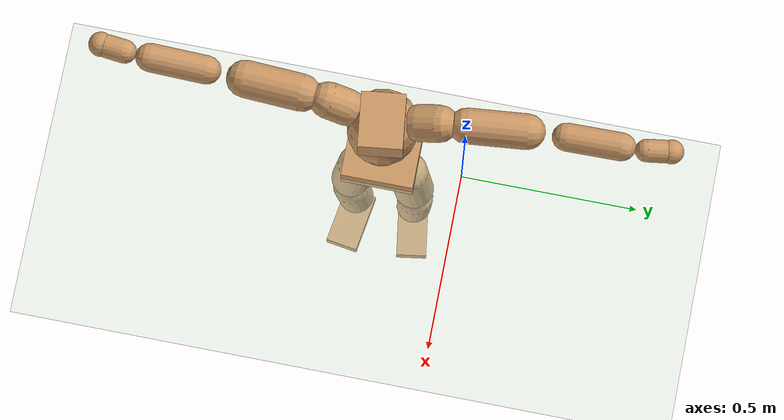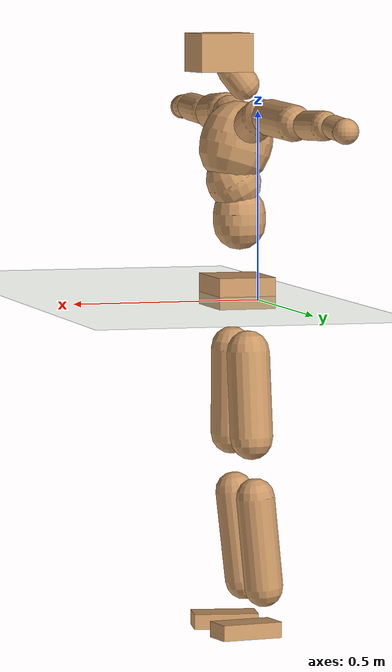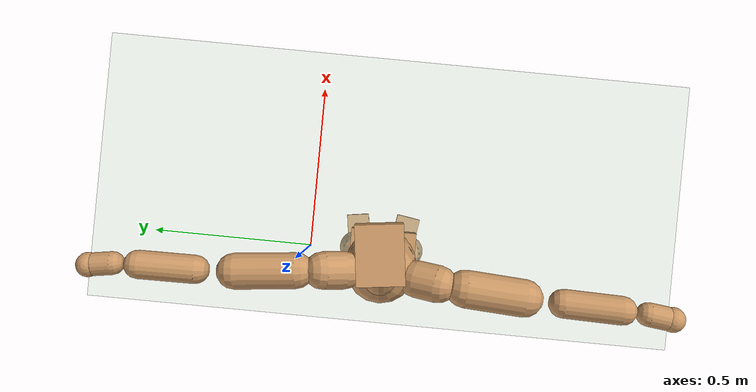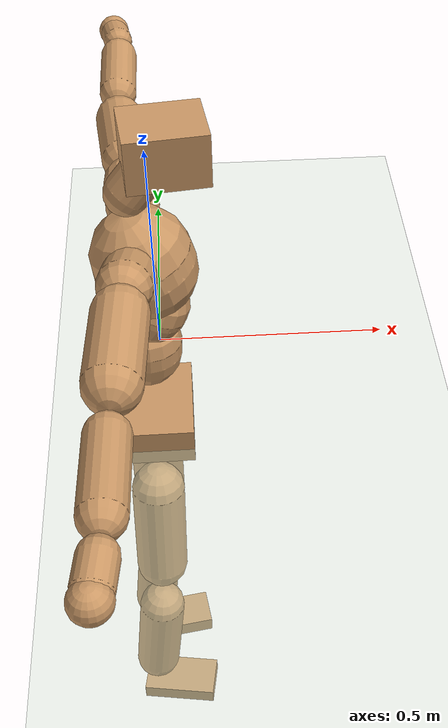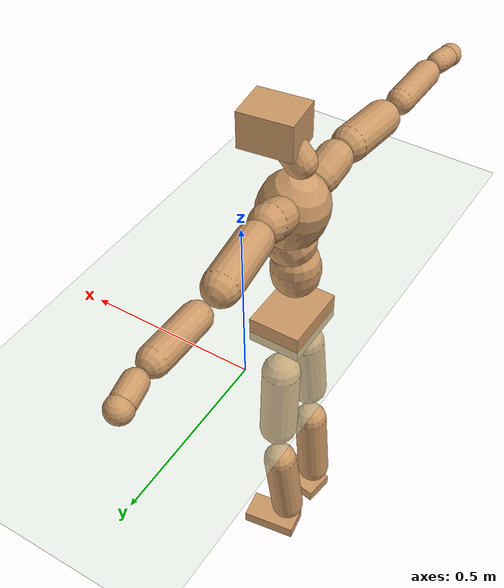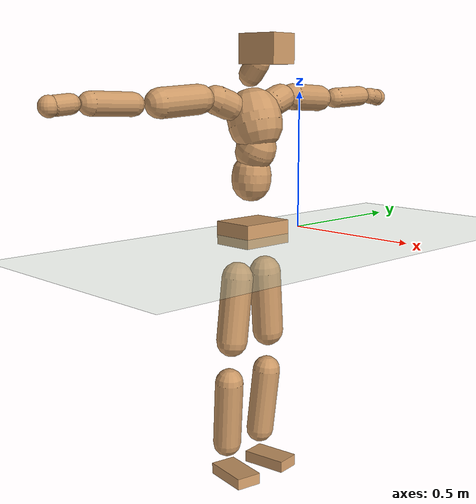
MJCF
<mujoco model="humanoid">
  <compiler coordinate="local" angle="radian"/>
  <default>
    <joint damping="0.0" armature="0.01" stiffness="0.0" limited="true"/>
    <geom conaffinity="1" condim="3" contype="7" margin="0.001" rgba="0.8 0.6 .4 1"/>
  </default>
  <asset>
    <texture type="skybox" builtin="gradient" rgb1=".4 .5 .6" rgb2="0 0 0" width="100" height="100"/>
    <texture builtin="flat" height="1278" mark="cross" markrgb="1 1 1" name="texgeom" random="0.01" rgb1="0.8 0.6 0.4" rgb2="0.8 0.6 0.4" type="cube" width="127"/>
    <texture builtin="checker" height="100" name="texplane" rgb1="0 0 0" rgb2="0.8 0.8 0.8" type="2d" width="100"/>
    <material name="MatPlane" reflectance="0.5" shininess="1" specular="1" texrepeat="60 60" texture="texplane"/>
    <material name="geom" texture="texgeom" texuniform="true"/>
  </asset>
  <worldbody>
    <light cutoff="100" diffuse="1 1 1" dir="-0 0 -1.3" directional="true" exponent="1" pos="0 0 1.3" specular=".1 .1 .1"/>
    <geom conaffinity="1" condim="3" name="floor" pos="0 0 0" rgba="0.8 0.9 0.8 1" size="100 100 .2" type="plane" material="MatPlane"/>
    <body name="Pelvis" pos="-0.0015 -0.23 0.0193">
      <freejoint name="Pelvis"/>
      <geom type="box" contype="1" conaffinity="1" density="500" pos="-0.0071 0.0000 -0.0133" size="0.0779 0.1028 0.0419" quat="1.0000 0.0000 0.0000 -0.0000" name="Pelvis"/>
      <body name="L_Hip" pos="-0.016 0.0666 -0.0951">
        <joint name="L_Hip_x" type="hinge" pos="0 0 0" axis="1 0 0" stiffness="800" damping="80" armature="0.02" range="-180.0000 180.0000"/>
        <joint name="L_Hip_y" type="hinge" pos="0 0 0" axis="0 1 0" stiffness="800" damping="80" armature="0.02" range="-180.0000 180.0000"/>
        <joint name="L_Hip_z" type="hinge" pos="0 0 0" axis="0 0 1" stiffness="800" damping="80" armature="0.02" range="-180.0000 180.0000"/>
        <geom type="capsule" contype="1" conaffinity="1" density="500" fromto="-0.0012 0.0067 -0.0771 -0.0050 0.0267 -0.3085" size="0.0577" name="L_Hip"/>
        <body name="L_Knee" pos="-0.0062 0.0334 -0.3857">
          <joint name="L_Knee_x" type="hinge" pos="0 0 0" axis="1 0 0" stiffness="800" damping="80" armature="0.02" range="-180.0000 180.0000"/>
          <joint name="L_Knee_y" type="hinge" pos="0 0 0" axis="0 1 0" stiffness="800" damping="80" armature="0.02" range="-180.0000 180.0000"/>
          <joint name="L_Knee_z" type="hinge" pos="0 0 0" axis="0 0 1" stiffness="800" damping="80" armature="0.02" range="-180.0000 180.0000"/>
          <geom type="capsule" contype="1" conaffinity="1" density="500" fromto="-0.0088 -0.0028 -0.0821 -0.0350 -0.0112 -0.3284" size="0.0521" name="L_Knee"/>
          <body name="L_Ankle" pos="-0.0438 -0.014 -0.4105">
            <joint name="L_Ankle_x" type="hinge" pos="0 0 0" axis="1 0 0" stiffness="800" damping="80" armature="0.02" range="-180.0000 180.0000"/>
            <joint name="L_Ankle_y" type="hinge" pos="0 0 0" axis="0 1 0" stiffness="800" damping="80" armature="0.02" range="-180.0000 180.0000"/>
            <joint name="L_Ankle_z" type="hinge" pos="0 0 0" axis="0 0 1" stiffness="800" damping="80" armature="0.02" range="-180.0000 180.0000"/>
            <geom type="box" contype="1" conaffinity="1" density="500" pos="0.0604 0.0090 -0.0287" size="0.0853 0.0454 0.0214" quat="0.9972 0.0000 0.0000 0.0742" name="L_Ankle"/>
            <body name="L_Toe" pos="0.1209 0.0181 -0.0574">
              <joint name="L_Toe_x" type="hinge" pos="0 0 0" axis="1 0 0" stiffness="500" damping="50" armature="0.02" range="-180.0000 180.0000"/>
              <joint name="L_Toe_y" type="hinge" pos="0 0 0" axis="0 1 0" stiffness="500" damping="50" armature="0.02" range="-180.0000 180.0000"/>
              <joint name="L_Toe_z" type="hinge" pos="0 0 0" axis="0 0 1" stiffness="500" damping="50" armature="0.02" range="-180.0000 180.0000"/>
              <geom type="box" contype="1" conaffinity="1" density="500" pos="0.0000 0.0000 0.0280" size="0.001 0.0023 0.001" quat="0.9967 0.0000 0.0000 0.0809" name="L_Toe"/>
            </body>
          </body>
        </body>
      </body>
      <body name="R_Hip" pos="-0.0113 -0.0632 -0.0946">
        <joint name="R_Hip_x" type="hinge" pos="0 0 0" axis="1 0 0" stiffness="800" damping="80" armature="0.02" range="-180.0000 180.0000"/>
        <joint name="R_Hip_y" type="hinge" pos="0 0 0" axis="0 1 0" stiffness="800" damping="80" armature="0.02" range="-180.0000 180.0000"/>
        <joint name="R_Hip_z" type="hinge" pos="0 0 0" axis="0 0 1" stiffness="800" damping="80" armature="0.02" range="-180.0000 180.0000"/>
        <geom type="capsule" contype="1" conaffinity="1" density="500" fromto="-0.0019 -0.0079 -0.0784 -0.0076 -0.0316 -0.3136" size="0.0569" name="R_Hip"/>
        <body name="R_Knee" pos="-0.0094 -0.0395 -0.392">
          <joint name="R_Knee_x" type="hinge" pos="0 0 0" axis="1 0 0" stiffness="800" damping="80" armature="0.02" range="-180.0000 180.0000"/>
          <joint name="R_Knee_y" type="hinge" pos="0 0 0" axis="0 1 0" stiffness="800" damping="80" armature="0.02" range="-180.0000 180.0000"/>
          <joint name="R_Knee_z" type="hinge" pos="0 0 0" axis="0 0 1" stiffness="800" damping="80" armature="0.02" range="-180.0000 180.0000"/>
          <geom type="capsule" contype="1" conaffinity="1" density="500" fromto="-0.0082 0.0035 -0.0818 -0.0329 0.0138 -0.3272" size="0.0523" name="R_Knee"/>
          <body name="R_Ankle" pos="-0.0411 0.0173 -0.409">
            <joint name="R_Ankle_x" type="hinge" pos="0 0 0" axis="1 0 0" stiffness="800" damping="80" armature="0.02" range="-180.0000 180.0000"/>
            <joint name="R_Ankle_y" type="hinge" pos="0 0 0" axis="0 1 0" stiffness="800" damping="80" armature="0.02" range="-180.0000 180.0000"/>
            <joint name="R_Ankle_z" type="hinge" pos="0 0 0" axis="0 0 1" stiffness="800" damping="80" armature="0.02" range="-180.0000 180.0000"/>
            <geom type="box" contype="1" conaffinity="1" density="500" pos="0.0623 -0.0099 -0.0242" size="0.0874 0.048 0.0206" quat="0.9969 0.0000 0.0000 -0.0785" name="R_Ankle"/>
            <body name="R_Toe" pos="0.1246 -0.0197 -0.0485">
              <joint name="R_Toe_x" type="hinge" pos="0 0 0" axis="1 0 0" stiffness="500" damping="50" armature="0.02" range="-180.0000 180.0000"/>
              <joint name="R_Toe_y" type="hinge" pos="0 0 0" axis="0 1 0" stiffness="500" damping="50" armature="0.02" range="-180.0000 180.0000"/>
              <joint name="R_Toe_z" type="hinge" pos="0 0 0" axis="0 0 1" stiffness="500" damping="50" armature="0.02" range="-180.0000 180.0000"/>
              <geom type="box" contype="1" conaffinity="1" density="500" pos="0.0000 0.0000 0.0269" size="0.0009 0.0023 0.0012" quat="0.9976 0.0000 0.0000 -0.0695" name="R_Toe"/>
            </body>
          </body>
        </body>
      </body>
      <body name="Torso" pos="-0.0155 -0.0033 0.1096">
        <joint name="Torso_x" type="hinge" pos="0 0 0" axis="1 0 0" stiffness="1000" damping="100" armature="0.02" range="-180.0000 180.0000"/>
        <joint name="Torso_y" type="hinge" pos="0 0 0" axis="0 1 0" stiffness="1000" damping="100" armature="0.02" range="-180.0000 180.0000"/>
        <joint name="Torso_z" type="hinge" pos="0 0 0" axis="0 0 1" stiffness="1000" damping="100" armature="0.02" range="-180.0000 180.0000"/>
        <geom type="capsule" contype="1" conaffinity="1" density="500" fromto="0.0022 0.0028 0.0872 0.0014 0.0019 0.0582" size="0.0707" name="Torso"/>
        <body name="Spine" pos="0.0036 0.0047 0.1454">
          <joint name="Spine_x" type="hinge" pos="0 0 0" axis="1 0 0" stiffness="1000" damping="100" armature="0.02" range="-180.0000 180.0000"/>
          <joint name="Spine_y" type="hinge" pos="0 0 0" axis="0 1 0" stiffness="1000" damping="100" armature="0.02" range="-180.0000 180.0000"/>
          <joint name="Spine_z" type="hinge" pos="0 0 0" axis="0 0 1" stiffness="1000" damping="100" armature="0.02" range="-180.0000 180.0000"/>
          <geom type="capsule" contype="1" conaffinity="1" density="500" fromto="0.0188 0.0018 0.0322 0.0125 0.0012 0.0214" size="0.072" name="Spine"/>
          <body name="Chest" pos="0.0313 0.0029 0.0536">
            <joint name="Chest_x" type="hinge" pos="0 0 0" axis="1 0 0" stiffness="1000" damping="100" armature="0.02" range="-180.0000 180.0000"/>
            <joint name="Chest_y" type="hinge" pos="0 0 0" axis="0 1 0" stiffness="1000" damping="100" armature="0.02" range="-180.0000 180.0000"/>
            <joint name="Chest_z" type="hinge" pos="0 0 0" axis="0 0 1" stiffness="1000" damping="100" armature="0.02" range="-180.0000 180.0000"/>
            <geom type="capsule" contype="1" conaffinity="1" density="500" fromto="-0.0275 -0.0004 0.0929 -0.0183 -0.0002 0.0619" size="0.0968" name="Chest"/>
            <body name="Neck" pos="-0.054 -0.0009 0.2198">
              <joint name="Neck_x" type="hinge" pos="0 0 0" axis="1 0 0" stiffness="500" damping="50" armature="0.02" range="-180.0000 180.0000"/>
              <joint name="Neck_y" type="hinge" pos="0 0 0" axis="0 1 0" stiffness="500" damping="50" armature="0.02" range="-180.0000 180.0000"/>
              <joint name="Neck_z" type="hinge" pos="0 0 0" axis="0 0 1" stiffness="500" damping="50" armature="0.02" range="-180.0000 180.0000"/>
              <geom type="capsule" contype="1" conaffinity="1" density="500" fromto="0.0107 0.0010 0.0131 0.0427 0.0039 0.0525" size="0.0424" name="Neck"/>
              <body name="Head" pos="0.0534 0.0048 0.0656">
                <joint name="Head_x" type="hinge" pos="0 0 0" axis="1 0 0" stiffness="500" damping="50" armature="0.02" range="-180.0000 180.0000"/>
                <joint name="Head_y" type="hinge" pos="0 0 0" axis="0 1 0" stiffness="500" damping="50" armature="0.02" range="-180.0000 180.0000"/>
                <joint name="Head_z" type="hinge" pos="0 0 0" axis="0 0 1" stiffness="500" damping="50" armature="0.02" range="-180.0000 180.0000"/>
                <geom type="box" contype="1" conaffinity="1" density="500" pos="0.0277 0.0034 0.0338" size="0.0748 0.0595 0.0519" quat="0.9981 0.0000 0.0000 0.0613" name="Head"/>
              </body>
            </body>
            <body name="L_Thorax" pos="-0.0394 0.0796 0.1239">
              <joint name="L_Thorax_x" type="hinge" pos="0 0 0" axis="1 0 0" stiffness="500" damping="50" armature="0.02" range="-180.0000 180.0000"/>
              <joint name="L_Thorax_y" type="hinge" pos="0 0 0" axis="0 1 0" stiffness="500" damping="50" armature="0.02" range="-180.0000 180.0000"/>
              <joint name="L_Thorax_z" type="hinge" pos="0 0 0" axis="0 0 1" stiffness="500" damping="50" armature="0.02" range="-180.0000 180.0000"/>
              <geom type="capsule" contype="1" conaffinity="1" density="500" fromto="-0.0013 0.0178 0.0065 -0.0052 0.0714 0.0260" size="0.0512" name="L_Thorax"/>
              <body name="L_Shoulder" pos="-0.0066 0.0892 0.0324">
                <joint name="L_Shoulder_x" type="hinge" pos="0 0 0" axis="1 0 0" stiffness="500" damping="50" armature="0.02" range="-720.0000 720.0000"/>
                <joint name="L_Shoulder_y" type="hinge" pos="0 0 0" axis="0 1 0" stiffness="500" damping="50" armature="0.02" range="-720.0000 720.0000"/>
                <joint name="L_Shoulder_z" type="hinge" pos="0 0 0" axis="0 0 1" stiffness="500" damping="50" armature="0.02" range="-720.0000 720.0000"/>
                <geom type="capsule" contype="1" conaffinity="1" density="500" fromto="-0.0057 0.0542 -0.0028 -0.0229 0.2168 -0.0110" size="0.0488" name="L_Shoulder"/>
                <body name="L_Elbow" pos="-0.0286 0.271 -0.0138">
                  <joint name="L_Elbow_x" type="hinge" pos="0 0 0" axis="1 0 0" stiffness="500" damping="50" armature="0.02" range="-720.0000 720.0000"/>
                  <joint name="L_Elbow_y" type="hinge" pos="0 0 0" axis="0 1 0" stiffness="500" damping="50" armature="0.02" range="-720.0000 720.0000"/>
                  <joint name="L_Elbow_z" type="hinge" pos="0 0 0" axis="0 0 1" stiffness="500" damping="50" armature="0.02" range="-720.0000 720.0000"/>
                  <geom type="capsule" contype="1" conaffinity="1" density="500" fromto="-0.0001 0.0502 0.0019 -0.0005 0.2009 0.0076" size="0.0386" name="L_Elbow"/>
                  <body name="L_Wrist" pos="-0.0006 0.2512 0.0095">
                    <joint name="L_Wrist_x" type="hinge" pos="0 0 0" axis="1 0 0" stiffness="300" damping="30" armature="0.02" range="-180.0000 180.0000"/>
                    <joint name="L_Wrist_y" type="hinge" pos="0 0 0" axis="0 1 0" stiffness="300" damping="30" armature="0.02" range="-180.0000 180.0000"/>
                    <joint name="L_Wrist_z" type="hinge" pos="0 0 0" axis="0 0 1" stiffness="300" damping="30" armature="0.02" range="-180.0000 180.0000"/>
                    <geom type="capsule" contype="1" conaffinity="1" density="500" fromto="-0.0028 0.0167 -0.0020 -0.0111 0.0667 -0.0080" size="0.0313" name="L_Wrist"/>
                    <body name="L_Hand" pos="-0.0139 0.0833 -0.01">
                      <joint name="L_Hand_x" type="hinge" pos="0 0 0" axis="1 0 0" stiffness="300" damping="30" armature="0.02" range="-180.0000 180.0000"/>
                      <joint name="L_Hand_y" type="hinge" pos="0 0 0" axis="0 1 0" stiffness="300" damping="30" armature="0.02" range="-180.0000 180.0000"/>
                      <joint name="L_Hand_z" type="hinge" pos="0 0 0" axis="0 0 1" stiffness="300" damping="30" armature="0.02" range="-180.0000 180.0000"/>
                      <geom type="sphere" contype="1" conaffinity="1" density="500" size="0.0335" pos="0.0000 0.0000 0.0000" name="L_Hand"/>
                    </body>
                  </body>
                </body>
              </body>
            </body>
            <body name="R_Thorax" pos="-0.0441 -0.0805 0.1207">
              <joint name="R_Thorax_x" type="hinge" pos="0 0 0" axis="1 0 0" stiffness="500" damping="50" armature="0.02" range="-180.0000 180.0000"/>
              <joint name="R_Thorax_y" type="hinge" pos="0 0 0" axis="0 1 0" stiffness="500" damping="50" armature="0.02" range="-180.0000 180.0000"/>
              <joint name="R_Thorax_z" type="hinge" pos="0 0 0" axis="0 0 1" stiffness="500" damping="50" armature="0.02" range="-180.0000 180.0000"/>
              <geom type="capsule" contype="1" conaffinity="1" density="500" fromto="-0.0019 -0.0189 0.0069 -0.0076 -0.0755 0.0276" size="0.0503" name="R_Thorax"/>
              <body name="R_Shoulder" pos="-0.0095 -0.0943 0.0344">
                <joint name="R_Shoulder_x" type="hinge" pos="0 0 0" axis="1 0 0" stiffness="500" damping="50" armature="0.02" range="-720.0000 720.0000"/>
                <joint name="R_Shoulder_y" type="hinge" pos="0 0 0" axis="0 1 0" stiffness="500" damping="50" armature="0.02" range="-720.0000 720.0000"/>
                <joint name="R_Shoulder_z" type="hinge" pos="0 0 0" axis="0 0 1" stiffness="500" damping="50" armature="0.02" range="-720.0000 720.0000"/>
                <geom type="capsule" contype="1" conaffinity="1" density="500" fromto="-0.0036 -0.0530 -0.0033 -0.0145 -0.2120 -0.0133" size="0.0512" name="R_Shoulder"/>
                <body name="R_Elbow" pos="-0.0181 -0.265 -0.0166">
                  <joint name="R_Elbow_x" type="hinge" pos="0 0 0" axis="1 0 0" stiffness="500" damping="50" armature="0.02" range="-720.0000 720.0000"/>
                  <joint name="R_Elbow_y" type="hinge" pos="0 0 0" axis="0 1 0" stiffness="500" damping="50" armature="0.02" range="-720.0000 720.0000"/>
                  <joint name="R_Elbow_z" type="hinge" pos="0 0 0" axis="0 0 1" stiffness="500" damping="50" armature="0.02" range="-720.0000 720.0000"/>
                  <geom type="capsule" contype="1" conaffinity="1" density="500" fromto="-0.0010 -0.0523 0.0018 -0.0042 -0.2093 0.0071" size="0.0392" name="R_Elbow"/>
                  <body name="R_Wrist" pos="-0.0052 -0.2617 0.0089">
                    <joint name="R_Wrist_x" type="hinge" pos="0 0 0" axis="1 0 0" stiffness="300" damping="30" armature="0.02" range="-180.0000 180.0000"/>
                    <joint name="R_Wrist_y" type="hinge" pos="0 0 0" axis="0 1 0" stiffness="300" damping="30" armature="0.02" range="-180.0000 180.0000"/>
                    <joint name="R_Wrist_z" type="hinge" pos="0 0 0" axis="0 0 1" stiffness="300" damping="30" armature="0.02" range="-180.0000 180.0000"/>
                    <geom type="capsule" contype="1" conaffinity="1" density="500" fromto="-0.0022 -0.0170 -0.0015 -0.0088 -0.0681 -0.0061" size="0.0323" name="R_Wrist"/>
                    <body name="R_Hand" pos="-0.011 -0.0852 -0.0076">
                      <joint name="R_Hand_x" type="hinge" pos="0 0 0" axis="1 0 0" stiffness="300" damping="30" armature="0.02" range="-180.0000 180.0000"/>
                      <joint name="R_Hand_y" type="hinge" pos="0 0 0" axis="0 1 0" stiffness="300" damping="30" armature="0.02" range="-180.0000 180.0000"/>
                      <joint name="R_Hand_z" type="hinge" pos="0 0 0" axis="0 0 1" stiffness="300" damping="30" armature="0.02" range="-180.0000 180.0000"/>
                      <geom type="sphere" contype="1" conaffinity="1" density="500" size="0.0341" pos="0.0000 0.0000 0.0000" name="R_Hand"/>
                    </body>
                  </body>
                </body>
              </body>
            </body>
          </body>
        </body>
      </body>
    </body>
  </worldbody>
  <actuator>
    <motor name="L_Hip_x" joint="L_Hip_x" gear="500"/>
    <motor name="L_Hip_y" joint="L_Hip_y" gear="500"/>
    <motor name="L_Hip_z" joint="L_Hip_z" gear="500"/>
    <motor name="L_Knee_x" joint="L_Knee_x" gear="500"/>
    <motor name="L_Knee_y" joint="L_Knee_y" gear="500"/>
    <motor name="L_Knee_z" joint="L_Knee_z" gear="500"/>
    <motor name="L_Ankle_x" joint="L_Ankle_x" gear="500"/>
    <motor name="L_Ankle_y" joint="L_Ankle_y" gear="500"/>
    <motor name="L_Ankle_z" joint="L_Ankle_z" gear="500"/>
    <motor name="L_Toe_x" joint="L_Toe_x" gear="500"/>
    <motor name="L_Toe_y" joint="L_Toe_y" gear="500"/>
    <motor name="L_Toe_z" joint="L_Toe_z" gear="500"/>
    <motor name="R_Hip_x" joint="R_Hip_x" gear="500"/>
    <motor name="R_Hip_y" joint="R_Hip_y" gear="500"/>
    <motor name="R_Hip_z" joint="R_Hip_z" gear="500"/>
    <motor name="R_Knee_x" joint="R_Knee_x" gear="500"/>
    <motor name="R_Knee_y" joint="R_Knee_y" gear="500"/>
    <motor name="R_Knee_z" joint="R_Knee_z" gear="500"/>
    <motor name="R_Ankle_x" joint="R_Ankle_x" gear="500"/>
    <motor name="R_Ankle_y" joint="R_Ankle_y" gear="500"/>
    <motor name="R_Ankle_z" joint="R_Ankle_z" gear="500"/>
    <motor name="R_Toe_x" joint="R_Toe_x" gear="500"/>
    <motor name="R_Toe_y" joint="R_Toe_y" gear="500"/>
    <motor name="R_Toe_z" joint="R_Toe_z" gear="500"/>
    <motor name="Torso_x" joint="Torso_x" gear="500"/>
    <motor name="Torso_y" joint="Torso_y" gear="500"/>
    <motor name="Torso_z" joint="Torso_z" gear="500"/>
    <motor name="Spine_x" joint="Spine_x" gear="500"/>
    <motor name="Spine_y" joint="Spine_y" gear="500"/>
    <motor name="Spine_z" joint="Spine_z" gear="500"/>
    <motor name="Chest_x" joint="Chest_x" gear="500"/>
    <motor name="Chest_y" joint="Chest_y" gear="500"/>
    <motor name="Chest_z" joint="Chest_z" gear="500"/>
    <motor name="Neck_x" joint="Neck_x" gear="500"/>
    <motor name="Neck_y" joint="Neck_y" gear="500"/>
    <motor name="Neck_z" joint="Neck_z" gear="500"/>
    <motor name="Head_x" joint="Head_x" gear="500"/>
    <motor name="Head_y" joint="Head_y" gear="500"/>
    <motor name="Head_z" joint="Head_z" gear="500"/>
    <motor name="L_Thorax_x" joint="L_Thorax_x" gear="500"/>
    <motor name="L_Thorax_y" joint="L_Thorax_y" gear="500"/>
    <motor name="L_Thorax_z" joint="L_Thorax_z" gear="500"/>
    <motor name="L_Shoulder_x" joint="L_Shoulder_x" gear="500"/>
    <motor name="L_Shoulder_y" joint="L_Shoulder_y" gear="500"/>
    <motor name="L_Shoulder_z" joint="L_Shoulder_z" gear="500"/>
    <motor name="L_Elbow_x" joint="L_Elbow_x" gear="500"/>
    <motor name="L_Elbow_y" joint="L_Elbow_y" gear="500"/>
    <motor name="L_Elbow_z" joint="L_Elbow_z" gear="500"/>
    <motor name="L_Wrist_x" joint="L_Wrist_x" gear="500"/>
    <motor name="L_Wrist_y" joint="L_Wrist_y" gear="500"/>
    <motor name="L_Wrist_z" joint="L_Wrist_z" gear="500"/>
    <motor name="L_Hand_x" joint="L_Hand_x" gear="500"/>
    <motor name="L_Hand_y" joint="L_Hand_y" gear="500"/>
    <motor name="L_Hand_z" joint="L_Hand_z" gear="500"/>
    <motor name="R_Thorax_x" joint="R_Thorax_x" gear="500"/>
    <motor name="R_Thorax_y" joint="R_Thorax_y" gear="500"/>
    <motor name="R_Thorax_z" joint="R_Thorax_z" gear="500"/>
    <motor name="R_Shoulder_x" joint="R_Shoulder_x" gear="500"/>
    <motor name="R_Shoulder_y" joint="R_Shoulder_y" gear="500"/>
    <motor name="R_Shoulder_z" joint="R_Shoulder_z" gear="500"/>
    <motor name="R_Elbow_x" joint="R_Elbow_x" gear="500"/>
    <motor name="R_Elbow_y" joint="R_Elbow_y" gear="500"/>
    <motor name="R_Elbow_z" joint="R_Elbow_z" gear="500"/>
    <motor name="R_Wrist_x" joint="R_Wrist_x" gear="500"/>
    <motor name="R_Wrist_y" joint="R_Wrist_y" gear="500"/>
    <motor name="R_Wrist_z" joint="R_Wrist_z" gear="500"/>
    <motor name="R_Hand_x" joint="R_Hand_x" gear="500"/>
    <motor name="R_Hand_y" joint="R_Hand_y" gear="500"/>
    <motor name="R_Hand_z" joint="R_Hand_z" gear="500"/>
  </actuator>
  <contact>
    <exclude body1="Torso" body2="Chest"/>
    <exclude body1="Head" body2="Chest"/>
    <exclude body1="R_Knee" body2="R_Toe"/>
    <exclude body1="R_Knee" body2="L_Ankle"/>
    <exclude body1="R_Knee" body2="L_Toe"/>
    <exclude body1="L_Knee" body2="L_Toe"/>
    <exclude body1="L_Knee" body2="R_Ankle"/>
    <exclude body1="L_Knee" body2="R_Toe"/>
    <exclude body1="L_Shoulder" body2="Chest"/>
    <exclude body1="R_Shoulder" body2="Chest"/>
  </contact>
  <sensor/>
  <size njmax="700" nconmax="700"/>
</mujoco>
